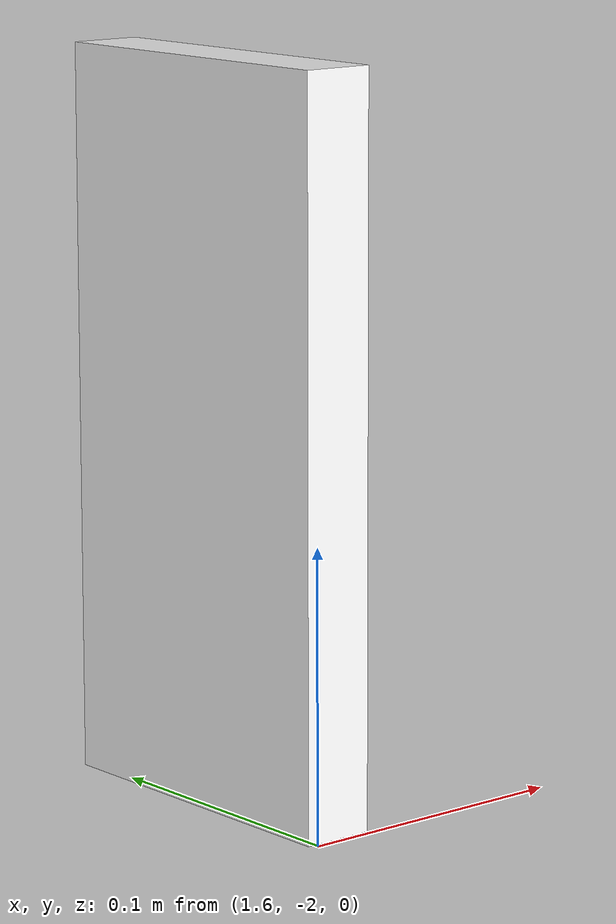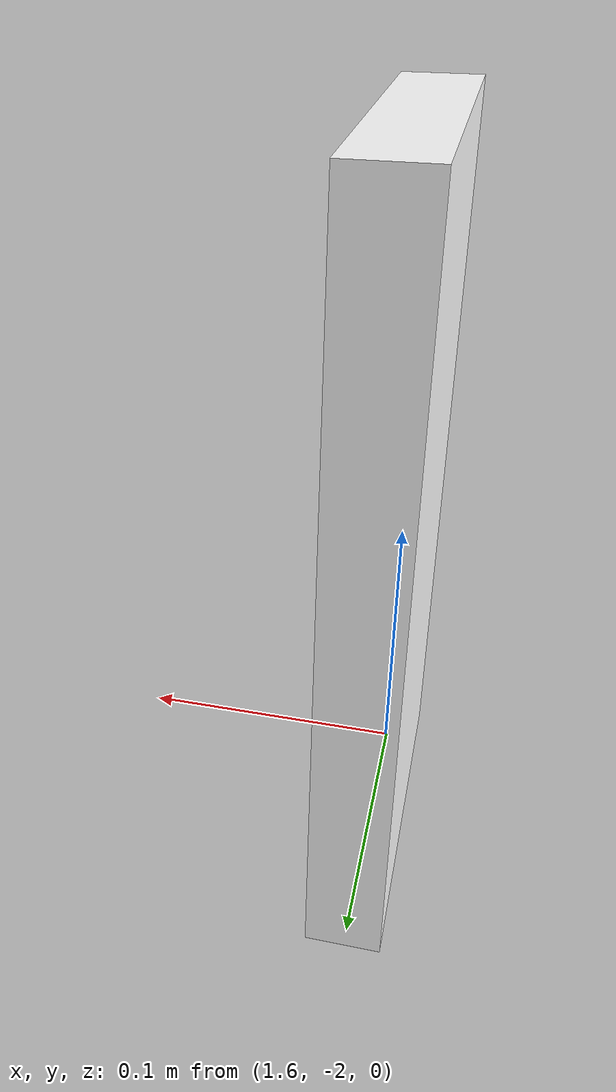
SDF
<?xml version='1.0'?>
<sdf version='1.6'>
  <model name='traffic_light_yellow'>
    <pose frame=''>0 0 0 0 -0 0</pose>
    <link name='traffic_light_yellow'>
       <collision name='collision'>
          <pose frame=''>1.6 -1.95 0.13 0 0 1.5708</pose>
          <geometry>
            <box>
              <size>0.12 0.025 0.25</size>
            </box>
          </geometry>
        </collision>
        <visual name='visual'>
          <pose frame=''>1.6 -1.95 0.13 0 0 1.5708</pose>
          <geometry>
            <box>
              <size>0.12 0.025 0.25</size>
            </box>
          </geometry>
          <material>
          <diffuse>1.0 1.0 1.0</diffuse>
          <specular>1.0 1.0 1.0</specular>
            <pbr>
              <metal>
                <albedo_map>file://traffic_light/traffic_light_yellow.png</albedo_map>
              </metal>
            </pbr>
          </material>
        </visual>
      </link>
      <static>1</static>
    </model>
</sdf>
